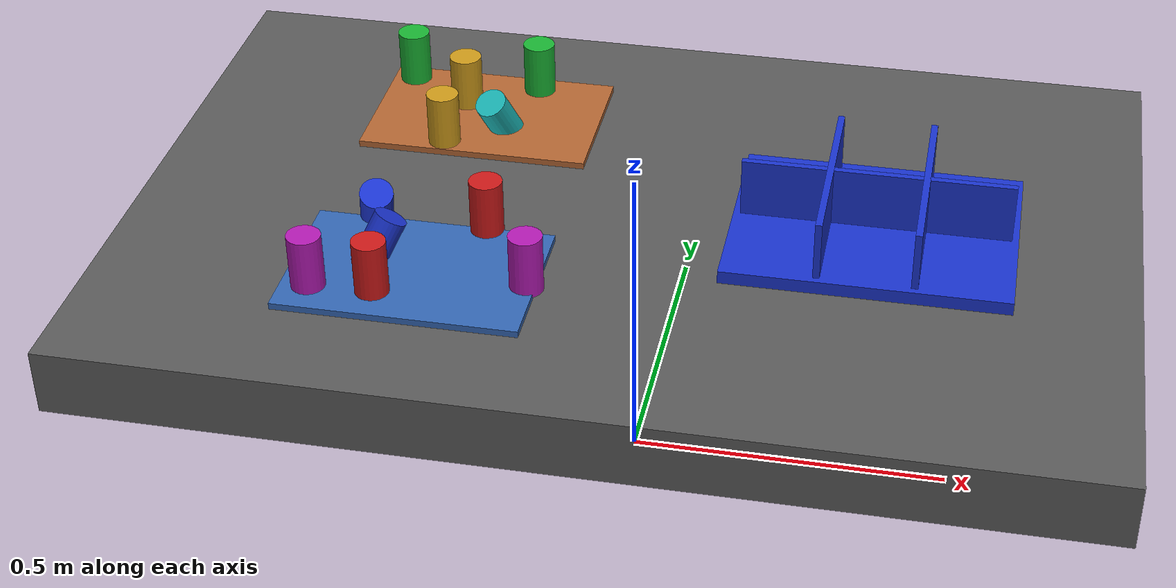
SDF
<?xml version="1.0" ?>
<sdf version="1.9">
  <!-- Standalone M1B scene.  The controller-backed Panda is spawned by the
       existing launch path; this file never alters the frozen M1A cube world. -->
  <world name="industrial_cylinder_v1">
    <physics name="bullet" type="bullet"><max_step_size>0.001</max_step_size><real_time_factor>1.0</real_time_factor></physics>
    <plugin name="gz::sim::systems::Physics" filename="gz-sim-physics-system"><engine><filename>gz-physics-bullet-featherstone-plugin</filename></engine></plugin>
    <plugin name="gz::sim::systems::UserCommands" filename="gz-sim-user-commands-system"/>
    <plugin name="gz::sim::systems::SceneBroadcaster" filename="gz-sim-scene-broadcaster-system"/>
    <plugin name="gz::sim::systems::Sensors" filename="gz-sim-sensors-system"><render_engine>ogre2</render_engine></plugin>
    <gravity>0 0 -9.81</gravity>
    <light type="directional" name="industrial_light"><pose>0 0 5 0 0 0</pose><direction>-0.3 0.2 -0.9</direction><diffuse>0.9 0.9 0.9 1</diffuse></light>
    <model name="industrial_work_table"><static>true</static><link name="link"><pose>0 0 0.4 0 0 0</pose><collision name="collision"><geometry><box><size>1.5 1.0 0.1</size></box></geometry></collision><visual name="visual"><geometry><box><size>1.5 1.0 0.1</size></box></geometry><material><diffuse>0.35 0.35 0.35 1</diffuse></material></visual></link></model>
    <model name="camera_fixture"><static>true</static><link name="camera_rgbd"><pose>-0.80 -0.80 1.40 0 0.77 0.93</pose><sensor name="front_rgbd" type="rgbd_camera"><always_on>1</always_on><update_rate>15</update_rate><topic>/xh/camera/rgbd</topic><camera><horizontal_fov>1.047</horizontal_fov><image><width>640</width><height>480</height><format>R8G8B8</format></image><clip><near>0.1</near><far>4.0</far></clip></camera></sensor></link></model>
    <model name="incoming_zone_a"><static>true</static><link name="link"><pose>-0.28 -0.22 0.455 0 0 0</pose><visual name="visual"><geometry><box><size>0.36 0.24 0.01</size></box></geometry><material><diffuse>0.2 0.4 0.7 1</diffuse></material></visual></link></model>
    <model name="incoming_zone_b"><static>true</static><link name="link"><pose>-0.28 0.22 0.455 0 0 0</pose><visual name="visual"><geometry><box><size>0.36 0.24 0.01</size></box></geometry><material><diffuse>0.7 0.4 0.2 1</diffuse></material></visual></link></model>
    <!-- M1B_RANDOM_PARTS_BEGIN -->
    <model name="cylinder_01"><pose>-0.3249 -0.2832 0.5000 0.0000 0.0000 -1.6273</pose><link name="link"><inertial><mass>0.06</mass></inertial><collision name="collision"><geometry><cylinder><radius>0.025</radius><length>0.09</length></cylinder></geometry></collision><visual name="visual"><geometry><cylinder><radius>0.025</radius><length>0.09</length></cylinder></geometry><material><diffuse>0.800 0.100 0.100 1</diffuse><specular>0.15 0.15 0.15 1</specular></material></visual></link></model>
    <model name="cylinder_02"><pose>-0.4244 0.3090 0.5000 3.1416 0.0000 -1.4193</pose><link name="link"><inertial><mass>0.06</mass></inertial><collision name="collision"><geometry><cylinder><radius>0.025</radius><length>0.09</length></cylinder></geometry></collision><visual name="visual"><geometry><cylinder><radius>0.025</radius><length>0.09</length></cylinder></geometry><material><diffuse>0.100 0.700 0.200 1</diffuse><specular>0.15 0.15 0.15 1</specular></material></visual></link></model>
    <model name="cylinder_03"><pose>-0.3690 -0.1044 0.4800 0.4500 -0.3000 0.9079</pose><link name="link"><inertial><mass>0.06</mass></inertial><collision name="collision"><geometry><cylinder><radius>0.025</radius><length>0.09</length></cylinder></geometry></collision><visual name="visual"><geometry><cylinder><radius>0.025</radius><length>0.09</length></cylinder></geometry><material><diffuse>0.100 0.200 0.800 1</diffuse><specular>0.15 0.15 0.15 1</specular></material></visual></link></model>
    <model name="cylinder_04"><pose>-0.3281 0.1263 0.5000 0.0000 0.0000 -1.6130</pose><link name="link"><inertial><mass>0.06</mass></inertial><collision name="collision"><geometry><cylinder><radius>0.025</radius><length>0.09</length></cylinder></geometry></collision><visual name="visual"><geometry><cylinder><radius>0.025</radius><length>0.09</length></cylinder></geometry><material><diffuse>0.800 0.600 0.100 1</diffuse><specular>0.15 0.15 0.15 1</specular></material></visual></link></model>
    <model name="cylinder_05"><pose>-0.1129 -0.2298 0.5000 3.1416 0.0000 1.1643</pose><link name="link"><inertial><mass>0.06</mass></inertial><collision name="collision"><geometry><cylinder><radius>0.025</radius><length>0.09</length></cylinder></geometry></collision><visual name="visual"><geometry><cylinder><radius>0.025</radius><length>0.09</length></cylinder></geometry><material><diffuse>0.700 0.100 0.700 1</diffuse><specular>0.15 0.15 0.15 1</specular></material></visual></link></model>
    <model name="cylinder_06"><pose>-0.2487 0.1760 0.4800 0.4500 -0.3000 0.0677</pose><link name="link"><inertial><mass>0.06</mass></inertial><collision name="collision"><geometry><cylinder><radius>0.025</radius><length>0.09</length></cylinder></geometry></collision><visual name="visual"><geometry><cylinder><radius>0.025</radius><length>0.09</length></cylinder></geometry><material><diffuse>0.100 0.700 0.700 1</diffuse><specular>0.15 0.15 0.15 1</specular></material></visual></link></model>
    <model name="cylinder_07"><pose>-0.2019 -0.1022 0.5000 0.0000 0.0000 0.7495</pose><link name="link"><inertial><mass>0.06</mass></inertial><collision name="collision"><geometry><cylinder><radius>0.025</radius><length>0.09</length></cylinder></geometry></collision><visual name="visual"><geometry><cylinder><radius>0.025</radius><length>0.09</length></cylinder></geometry><material><diffuse>0.800 0.100 0.100 1</diffuse><specular>0.15 0.15 0.15 1</specular></material></visual></link></model>
    <model name="cylinder_08"><pose>-0.2155 0.3078 0.5000 3.1416 0.0000 2.4453</pose><link name="link"><inertial><mass>0.06</mass></inertial><collision name="collision"><geometry><cylinder><radius>0.025</radius><length>0.09</length></cylinder></geometry></collision><visual name="visual"><geometry><cylinder><radius>0.025</radius><length>0.09</length></cylinder></geometry><material><diffuse>0.100 0.700 0.200 1</diffuse><specular>0.15 0.15 0.15 1</specular></material></visual></link></model>
    <model name="cylinder_09"><pose>-0.3415 -0.1944 0.4800 0.4500 -0.3000 2.7512</pose><link name="link"><inertial><mass>0.06</mass></inertial><collision name="collision"><geometry><cylinder><radius>0.025</radius><length>0.09</length></cylinder></geometry></collision><visual name="visual"><geometry><cylinder><radius>0.025</radius><length>0.09</length></cylinder></geometry><material><diffuse>0.100 0.200 0.800 1</diffuse><specular>0.15 0.15 0.15 1</specular></material></visual></link></model>
    <model name="cylinder_10"><pose>-0.3218 0.2467 0.5000 0.0000 0.0000 -1.2939</pose><link name="link"><inertial><mass>0.06</mass></inertial><collision name="collision"><geometry><cylinder><radius>0.025</radius><length>0.09</length></cylinder></geometry></collision><visual name="visual"><geometry><cylinder><radius>0.025</radius><length>0.09</length></cylinder></geometry><material><diffuse>0.800 0.600 0.100 1</diffuse><specular>0.15 0.15 0.15 1</specular></material></visual></link></model>
    <model name="cylinder_11"><pose>-0.4184 -0.2859 0.5000 3.1416 0.0000 -2.2744</pose><link name="link"><inertial><mass>0.06</mass></inertial><collision name="collision"><geometry><cylinder><radius>0.025</radius><length>0.09</length></cylinder></geometry></collision><visual name="visual"><geometry><cylinder><radius>0.025</radius><length>0.09</length></cylinder></geometry><material><diffuse>0.700 0.100 0.700 1</diffuse><specular>0.15 0.15 0.15 1</specular></material></visual></link></model>
    <!-- M1B_RANDOM_PARTS_END -->
    <model name="blue_partition_bin"><static>true</static><pose>0.36 0 0.45 0 0 0</pose><link name="link"><collision name="floor"><pose>0 0 0.01 0 0 0</pose><geometry><box><size>0.42 0.32 0.02</size></box></geometry></collision><visual name="floor_visual"><pose>0 0 0.01 0 0 0</pose><geometry><box><size>0.42 0.32 0.02</size></box></geometry><material><diffuse>0.1 0.2 0.8 1</diffuse></material></visual><visual name="row_divider"><pose>0 0 0.06 0 0 0</pose><geometry><box><size>0.40 0.01 0.10</size></box></geometry><material><diffuse>0.1 0.2 0.8 1</diffuse></material></visual><visual name="col_divider_a"><pose>-0.07 0 0.06 0 0 0</pose><geometry><box><size>0.01 0.30 0.10</size></box></geometry><material><diffuse>0.1 0.2 0.8 1</diffuse></material></visual><visual name="col_divider_b"><pose>0.07 0 0.06 0 0 0</pose><geometry><box><size>0.01 0.30 0.10</size></box></geometry><material><diffuse>0.1 0.2 0.8 1</diffuse></material></visual></link></model>
    <!-- Reserved only: second table, bin transport corridor, stackable-bin
         collision volume, and second arm mounting namespace. -->
  </world>
</sdf>
